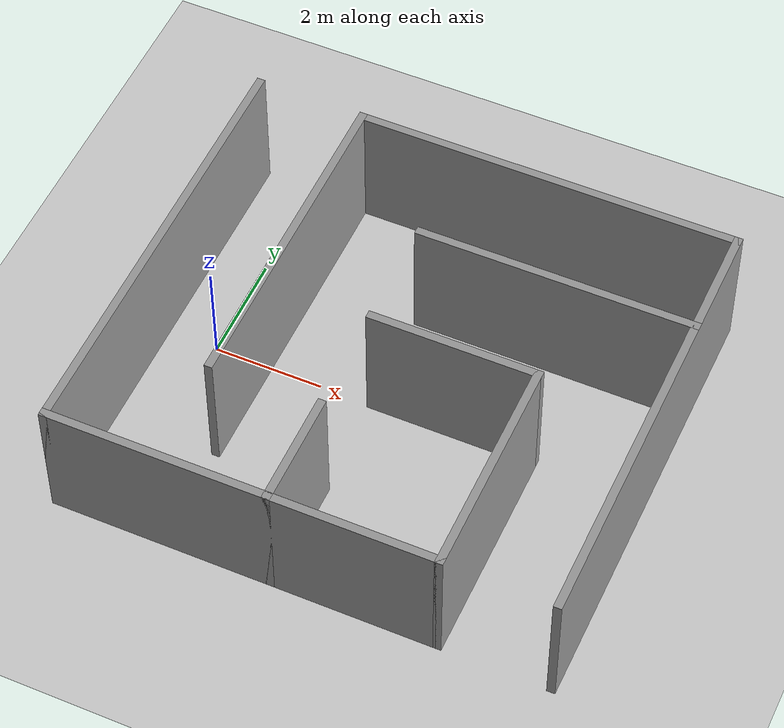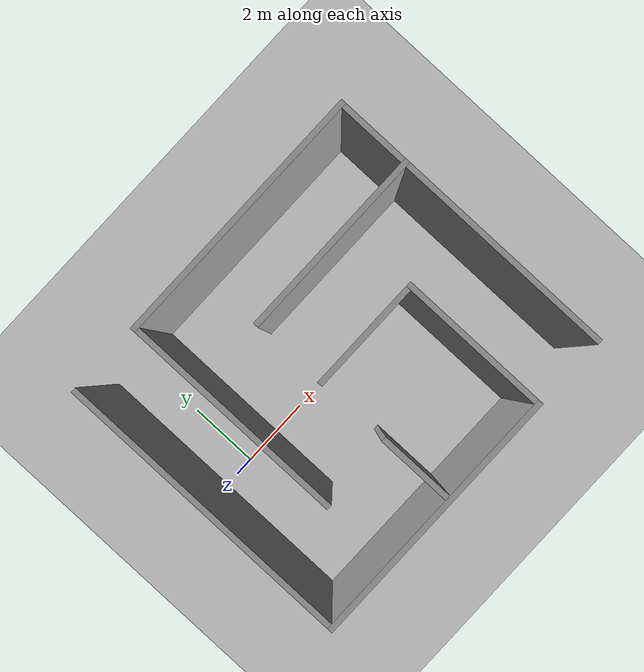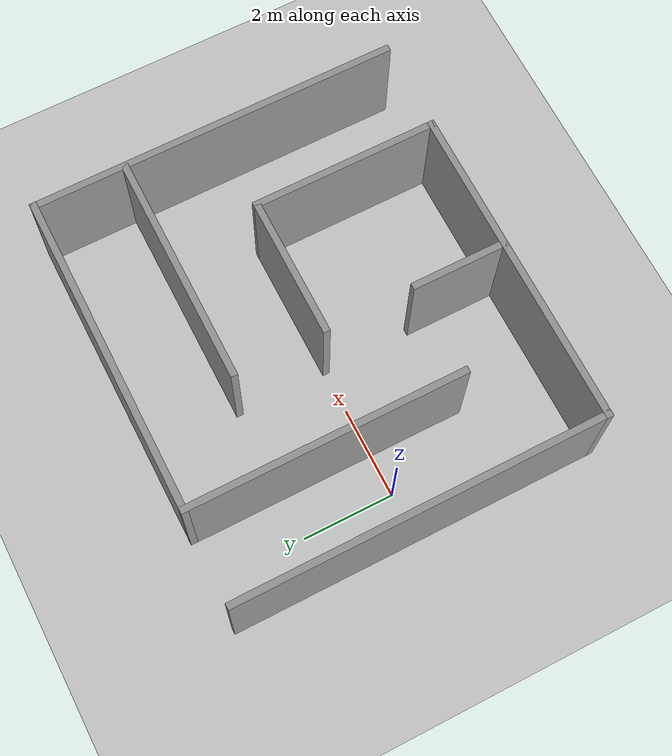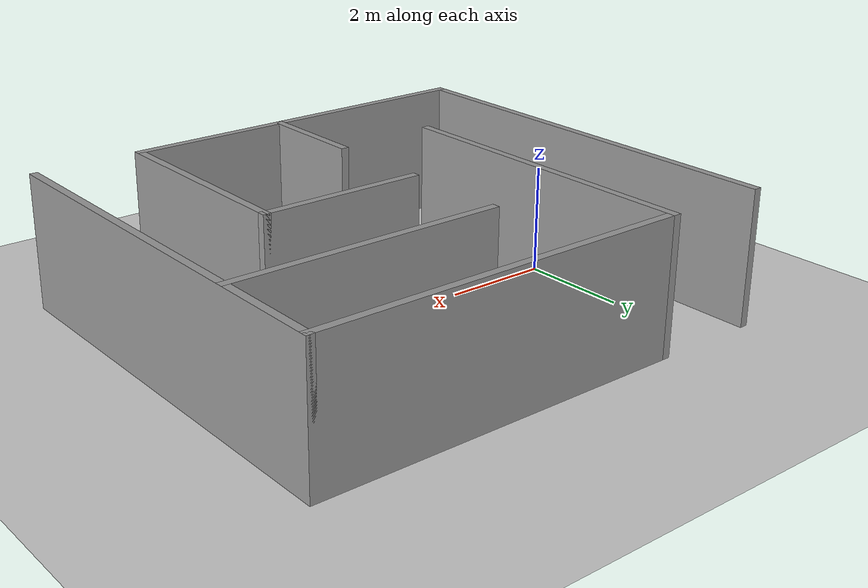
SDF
<sdf version="1.7">
 <world name="default">
  <light name="sun" type="directional">
   <pose>0 0 10 0 -0 0</pose>
   <diffuse>0.8 0.8 0.8 1</diffuse>
   <specular>0.2 0.2 0.2 1</specular>
   <attenuation>
    <range>1000</range>
    <constant>0.9</constant>
    <linear>0.01</linear>
    <quadratic>0.001</quadratic>
   </attenuation>
   <direction>-0.5 0.1 -0.9</direction>
   <spot><inner_angle>0</inner_angle><outer_angle>0</outer_angle><falloff>0</falloff></spot>
  </light>
  <model name="ground_plane">
   <static>1</static>
   <link name="link">
    <collision name="collision">
     <geometry><plane><normal>0 0 1</normal><size>100 100</size></plane></geometry>
     <surface><friction><ode><mu>100</mu><mu2>50</mu2></ode></friction></surface>
    </collision>
    <visual name="visual">
     <cast_shadows>0</cast_shadows>
     <geometry><plane><normal>0 0 1</normal><size>100 100</size></plane></geometry>
     <material>
      <script><uri>file://media/materials/scripts/gazebo.material</uri><name>Gazebo/Grey</name></script>
     </material>
    </visual>
   </link>
  </model>
  <gravity>0 0 -9.8</gravity>
  <magnetic_field>6e-06 2.3e-05 -4.2e-05</magnetic_field>
  <atmosphere type="adiabatic"/>
  <physics type="ode">
   <max_step_size>0.001</max_step_size>
   <real_time_factor>1</real_time_factor>
   <real_time_update_rate>1000</real_time_update_rate>
  </physics>
  <scene><ambient>0.4 0.4 0.4 1</ambient><background>0.7 0.7 0.7 1</background><shadows>1</shadows></scene>
  <spherical_coordinates>
   <surface_model>EARTH_WGS84</surface_model>
   <latitude_deg>0</latitude_deg>
   <longitude_deg>0</longitude_deg>
   <elevation>0</elevation>
   <heading_deg>0</heading_deg>
  </spherical_coordinates>
  <model name="test_Astar">
   <pose>3.5 0 0 0 -0 0</pose>
   <link name="Wall_14">
    <collision name="Wall_14_Collision">
     <geometry><box><size>7.15 0.15 2.5</size></box></geometry>
     <pose>0 0 1.25 0 -0 0</pose>
    </collision>
    <visual name="Wall_14_Visual">
     <pose>0 0 1.25 0 -0 0</pose>
     <geometry><box><size>7.15 0.15 2.5</size></box></geometry>
     <material>
      <script><uri>file://media/materials/scripts/gazebo.material</uri><name>Gazebo/Grey</name></script>
      <ambient>1 1 1 1</ambient>
     </material>
     <meta><layer>0</layer></meta>
    </visual>
    <pose>1 4 0 0 -0 0</pose>
   </link>
   <link name="Wall_16">
    <collision name="Wall_16_Collision">
     <geometry><box><size>7.15 0.15 2.5</size></box></geometry>
     <pose>0 0 1.25 0 -0 0</pose>
    </collision>
    <visual name="Wall_16_Visual">
     <pose>0 0 1.25 0 -0 0</pose>
     <geometry><box><size>7.15 0.15 2.5</size></box></geometry>
     <material>
      <script><uri>file://media/materials/scripts/gazebo.material</uri><name>Gazebo/Grey</name></script>
      <ambient>1 1 1 1</ambient>
     </material>
     <meta><layer>0</layer></meta>
    </visual>
    <pose>-1 -4 0 0 -0 0</pose>
   </link>
   <link name="Wall_18">
    <collision name="Wall_18_Collision">
     <geometry><box><size>8.15 0.15 2.5</size></box></geometry>
     <pose>0 0 1.25 0 -0 0</pose>
    </collision>
    <visual name="Wall_18_Visual">
     <pose>0 0 1.25 0 -0 0</pose>
     <geometry><box><size>8.15 0.15 2.5</size></box></geometry>
     <material>
      <script><uri>file://media/materials/scripts/gazebo.material</uri><name>Gazebo/Grey</name></script>
      <ambient>1 1 1 1</ambient>
     </material>
     <meta><layer>0</layer></meta>
    </visual>
    <pose>-4.5 -0 0 0 -0 1.5708</pose>
   </link>
   <link name="Wall_20">
    <collision name="Wall_20_Collision">
     <geometry><box><size>6.15 0.15 2.5</size></box></geometry>
     <pose>0 0 1.25 0 -0 0</pose>
    </collision>
    <visual name="Wall_20_Visual">
     <pose>0 0 1.25 0 -0 0</pose>
     <geometry><box><size>6.15 0.15 2.5</size></box></geometry>
     <material>
      <script><uri>file://media/materials/scripts/gazebo.material</uri><name>Gazebo/Grey</name></script>
      <ambient>1 1 1 1</ambient>
     </material>
     <meta><layer>0</layer></meta>
    </visual>
    <pose>-2.5 1 0 0 -0 -1.5708</pose>
   </link>
   <link name="Wall_22">
    <collision name="Wall_22_Collision">
     <geometry><box><size>5.15 0.15 2.5</size></box></geometry>
     <pose>0 0 1.25 0 -0 0</pose>
    </collision>
    <visual name="Wall_22_Visual">
     <pose>0 0 1.25 0 -0 0</pose>
     <geometry><box><size>5.15 0.15 2.5</size></box></geometry>
     <material>
      <script><uri>file://media/materials/scripts/gazebo.material</uri><name>Gazebo/Grey</name></script>
      <ambient>1 1 1 1</ambient>
     </material>
     <meta><layer>0</layer></meta>
    </visual>
    <pose>2 2 0 0 -0 0</pose>
   </link>
   <link name="Wall_24">
    <collision name="Wall_24_Collision">
     <geometry><box><size>8.15 0.15 2.5</size></box></geometry>
     <pose>0 0 1.25 0 -0 0</pose>
    </collision>
    <visual name="Wall_24_Visual">
     <pose>0 0 1.25 0 -0 0</pose>
     <geometry><box><size>8.15 0.15 2.5</size></box></geometry>
     <material>
      <script><uri>file://media/materials/scripts/gazebo.material</uri><name>Gazebo/Grey</name></script>
      <ambient>1 1 1 1</ambient>
     </material>
     <meta><layer>0</layer></meta>
    </visual>
    <pose>4.5 -0 0 0 -0 -1.5708</pose>
   </link>
   <link name="Wall_26">
    <collision name="Wall_26_Collision">
     <geometry><box><size>4.15 0.15 2.5</size></box></geometry>
     <pose>0 0 1.25 0 -0 0</pose>
    </collision>
    <visual name="Wall_26_Visual">
     <pose>0 0 1.25 0 -0 0</pose>
     <geometry><box><size>4.15 0.15 2.5</size></box></geometry>
     <material>
      <script><uri>file://media/materials/scripts/gazebo.material</uri><name>Gazebo/Grey</name></script>
      <ambient>1 1 1 1</ambient>
     </material>
     <meta><layer>0</layer></meta>
    </visual>
    <pose>2.5 -2 0 0 -0 1.5708</pose>
   </link>
   <link name="Wall_28">
    <collision name="Wall_28_Collision">
     <geometry><box><size>3.15 0.15 2.5</size></box></geometry>
     <pose>0 0 1.25 0 -0 0</pose>
    </collision>
    <visual name="Wall_28_Visual">
     <pose>0 0 1.25 0 -0 0</pose>
     <geometry><box><size>3.15 0.15 2.5</size></box></geometry>
     <material>
      <script><uri>file://media/materials/scripts/gazebo.material</uri><name>Gazebo/Grey</name></script>
      <ambient>1 1 1 1</ambient>
     </material>
     <meta><layer>0</layer></meta>
    </visual>
    <pose>1 -0 0 0 -0 0</pose>
   </link>
   <link name="Wall_30">
    <collision name="Wall_30_Collision">
     <geometry><box><size>2.15 0.15 2.5</size></box></geometry>
     <pose>0 0 1.25 0 -0 0</pose>
    </collision>
    <visual name="Wall_30_Visual">
     <pose>0 0 1.25 0 -0 0</pose>
     <geometry><box><size>2.15 0.15 2.5</size></box></geometry>
     <material>
      <script><uri>file://media/materials/scripts/gazebo.material</uri><name>Gazebo/Grey</name></script>
      <ambient>1 1 1 1</ambient>
     </material>
     <meta><layer>0</layer></meta>
    </visual>
    <pose>-0.5 -3 0 0 -0 -1.5708</pose>
   </link>
   <static>1</static>
  </model>
 </world>
</sdf>
